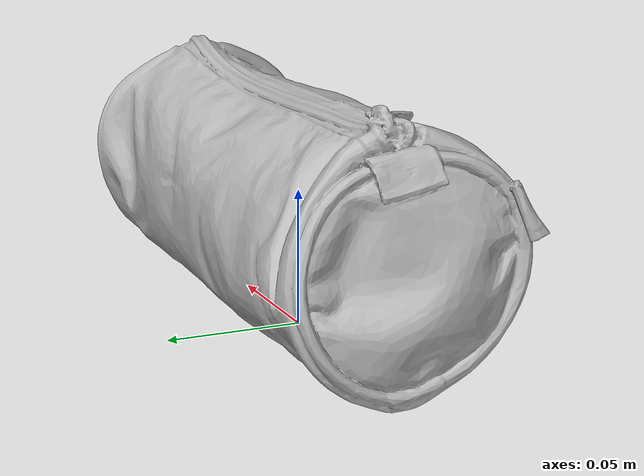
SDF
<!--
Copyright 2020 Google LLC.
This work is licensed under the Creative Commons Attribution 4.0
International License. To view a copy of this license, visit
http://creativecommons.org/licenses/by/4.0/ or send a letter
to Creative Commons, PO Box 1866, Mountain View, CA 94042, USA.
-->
<?xml version="1.0" ?>
<sdf version="1.6">
  <model name="Olive_Kids_Robots_Pencil_Case">
    <link name="link_0">
      <visual name="visual">
        <geometry>
          <mesh>
            <uri>meshes/model.obj</uri>
          </mesh>
        </geometry>
      </visual>
      <collision name="collision_0">
        <geometry>
          <mesh>
            <uri>meshes/model.obj</uri>
          </mesh>
        </geometry>
      </collision>
    </link>
  </model>
</sdf>
